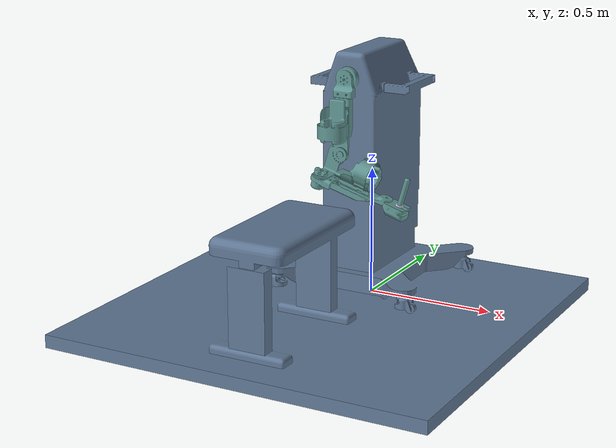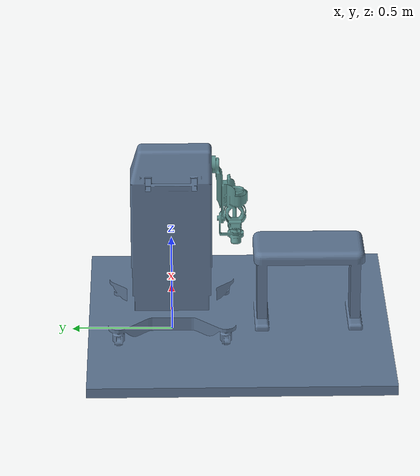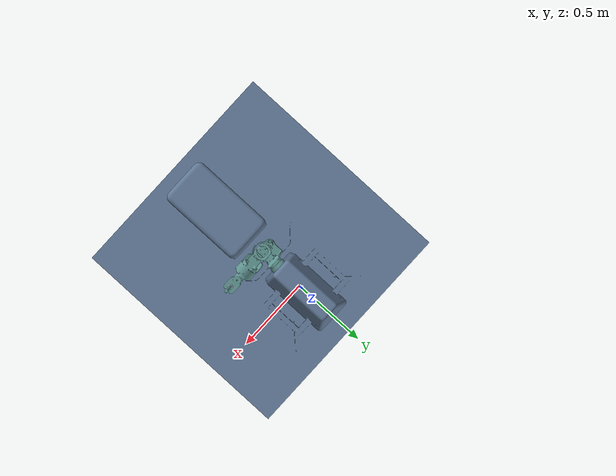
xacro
<?xml version="1.0"?>
<robot xmlns:xacro="http://www.ros.org/wiki/xacro" name="rehab_1dof_description">
    <xacro:arg name="initial_positions_file" default="initial_positions.yaml" />

    <!-- Import rehab_1dof_description urdf file -->
    <xacro:include filename="$(find rehab_1dof_description)/urdf/rehab_1dof_description.urdf" />

    <!-- Import control_xacro -->
    <xacro:include filename="rehab_1dof_description.ros2_control.xacro" />

    <xacro:rehab_1dof_description_ros2_control name="GazeboSimSystem" initial_positions_file="$(arg initial_positions_file)"/>

    <gazebo reference="base_link">
      <material>Gazebo/Gray</material>
    </gazebo>

    <gazebo reference="arm_link">
        <material>Gazebo/Yellow</material>
    </gazebo>

    <transmission name="shoulder_trans">
        <type>transmission_interface/SimpleTransmission</type>
        <joint name="shoulder_joint">
            <hardwareInterface>hardware_interface/PositionJointInterface</hardwareInterface>
        </joint>
        <actuator name="shoulder_motor">
            <mechanicalReduction>1</mechanicalReduction>
        </actuator>
    </transmission>

    <gazebo>
        <plugin name="gazebo_ros2_control" filename="libgazebo_ros2_control.so">
        <parameters>$(find rehab_1dof_moveit_config)/config/ros2_controllers.yaml</parameters>
        </plugin>
    </gazebo>

    <gazebo>
        <plugin name="shoulder_ft_sensor" filename="libgazebo_ros_ft_sensor.so">
        <ros>
            <namespace>/rehab_1dof</namespace>
            <remapping>wrench:=shoulder_wrench</remapping>
        </ros>
        <body_name>arm_link</body_name>
        <frame_name>world</frame_name>
        <update_rate>100.0</update_rate>
        <gaussian_noise>0.01</gaussian_noise>
        </plugin>
    </gazebo>

    <gazebo>
        <plugin name="shoulder_control_wrench" filename="libgazebo_ros_force.so">
            <ros>
                <namespace>rehab_1dof</namespace>
                <remapping>gazebo_ros_force:=shoulder_control_wrench</remapping>
            </ros>
            <link_name>arm_link</link_name>
            <updateRate>100.0</updateRate>
        </plugin>
    </gazebo>

</robot>

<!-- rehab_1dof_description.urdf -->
<robot name="rehab_1dof_description">
  <link name="base_link">
    <inertial>
      <origin xyz="0.00021257 -0.31056 0.12052" rpy="0 0 0" />
      <mass value="75.0" />
      <inertia ixx="22.595" ixy="-7.4479E-07" ixz="1.5578E-07"
       	       iyy="21.889" iyz="0.00070046" izz="43.742" />
    </inertial>
    <visual>
      <origin
        xyz="0 0 0"
        rpy="0 0 0" />
      <geometry>
        <mesh
          filename="package://rehab_1dof_description/meshes/base_link.STL" />
      </geometry>
      <material
        name="">
        <color
          rgba="0.37647 0.47059 0.58824 1" />
      </material>
    </visual>
    <collision>
      <origin
        xyz="0 0 0"
        rpy="0 0 0" />
      <geometry>
        <mesh
          filename="package://rehab_1dof_description/meshes/base_link.STL" />
      </geometry>
    </collision>
  </link>

  <link
    name="arm_link">
    <inertial>
      <origin
        xyz="-0.25671 -0.055563 0.09829"
        rpy="0 0 0" />
      <mass
        value="2.4366" />
      <inertia
        ixx="0.0031836"
        ixy="-0.00018573"
        ixz="0.00017661"
        iyy="0.0030425"
        iyz="-7.2918E-06"
        izz="0.0042541" />
    </inertial>
    <visual>
      <origin
        xyz="0 0 0"
        rpy="0 0 0" />
      <geometry>
        <mesh
          filename="package://rehab_1dof_description/meshes/arm_link.STL" />
      </geometry>
      <material
        name="">
        <color
          rgba="0.37647 0.58824 0.57647 1" />
      </material>
    </visual>
    <collision>
      <origin
        xyz="0 0 0"
        rpy="0 0 0" />
      <geometry>
        <mesh
          filename="package://rehab_1dof_description/meshes/arm_link.STL" />
      </geometry>
    </collision>
  </link>
  <joint
    name="shoulder_joint"
    type="revolute">
    <origin
      xyz="0 -0.193 0.89213"
      rpy="1.5708 -1.5708 0" />
    <parent
      link="base_link" />
    <child
      link="arm_link" />
    <axis
      xyz="0 0 1" />
    <limit
      lower="0"
      upper="1.571"
      effort="200"
      velocity="3" />
  </joint>
  <link
    name="hand_link">
    <inertial>
      <origin
        xyz="0.0024147 1.8041E-16 -1.1102E-16"
        rpy="0 0 0" />
      <mass
        value="0.001885" />
      <inertia
        ixx="3.0241E-07"
        ixy="-3.1019E-25"
        ixz="-3.9705E-23"
        iyy="1.5494E-07"
        iyz="9.5384E-24"
        izz="1.5494E-07" />
    </inertial>
    <visual>
      <origin
        xyz="0 0 0"
        rpy="0 0 0" />
      <geometry>
        <mesh
          filename="package://rehab_1dof_description/meshes/hand_link.STL" />
      </geometry>
      <material
        name="">
        <color
          rgba="0.79216 0.81961 0.93333 1" />
      </material>
    </visual>
    <collision>
      <origin
        xyz="0 0 0"
        rpy="0 0 0" />
      <geometry>
        <mesh
          filename="package://rehab_1dof_description/meshes/hand_link.STL" />
      </geometry>
    </collision>
  </link>
  <joint
    name="wrist_joint"
    type="fixed">
    <origin
      xyz="-0.41941 -0.27382 0.12737"
      rpy="1.5339 0 -0.28669" />
    <parent
      link="arm_link" />
    <child
      link="hand_link" />
    <axis
      xyz="0 0 1" />
  </joint>

  <link name="world"/>
  <joint name="world_dummy_joint" type="fixed">
    <origin xyz="0 0 0" rpy="0 0 0" />
    <parent link="world" />
    <child link="dummy_link" />
  </joint>

  <link name="dummy_link"/>
  <joint name="dummy_base_joint" type="fixed">
    <origin xyz="0 0 0" rpy="0 0 0" />
    <parent link="dummy_link" />
    <child link="base_link" />
  </joint>

</robot>
